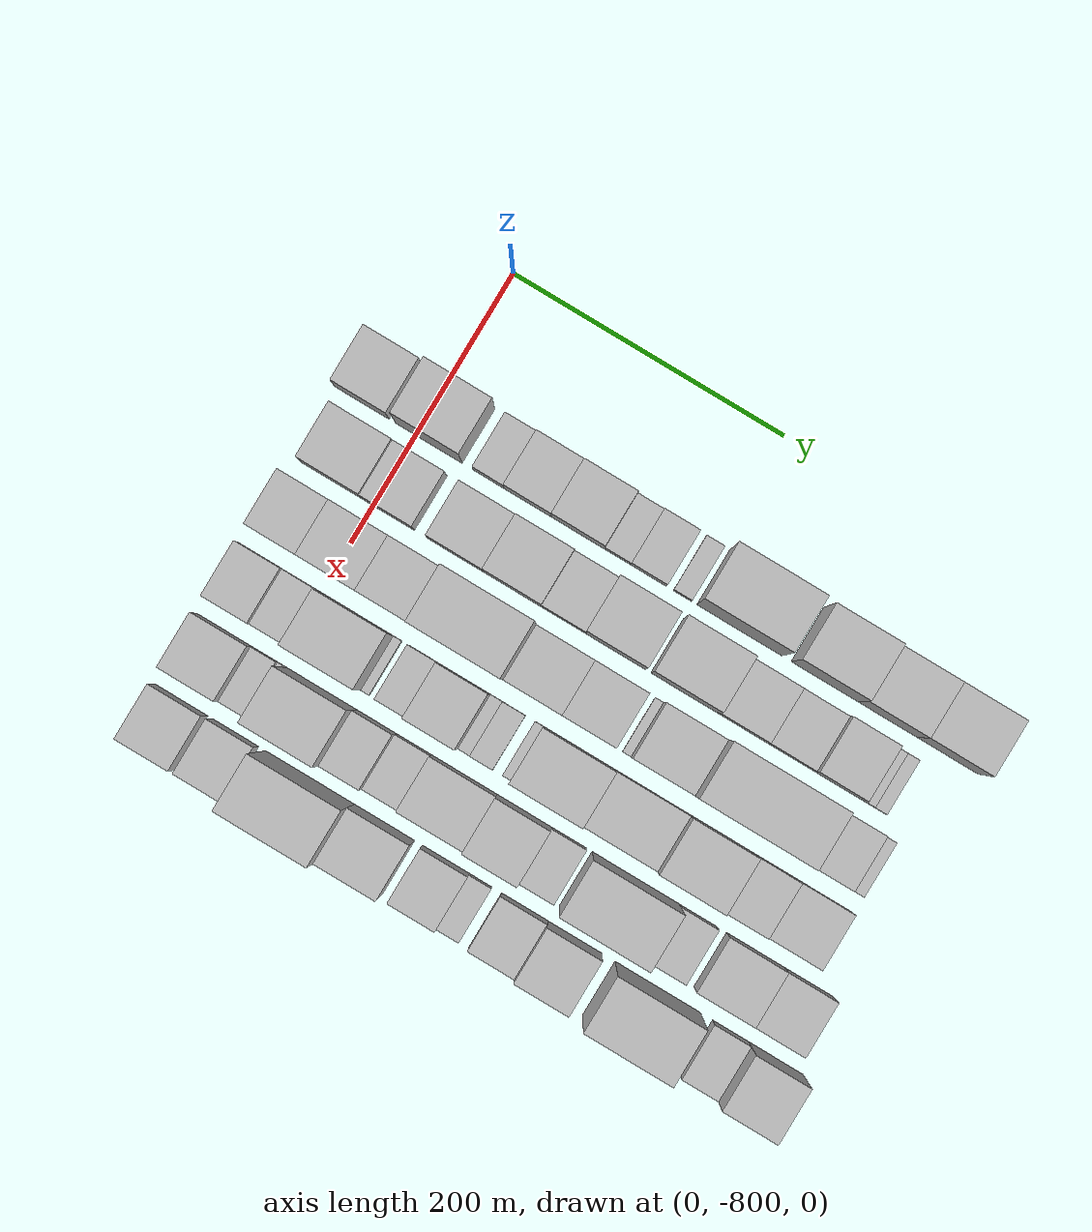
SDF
<sdf version="1.6">
 <world name="default">
  <model name="building_1">
   <static>1</static>
   <pose>100.0000 -839.8954 0 0.000000 0.000000 0.000000</pose>
   <link name="link">
    <pose>0 0 36.00 0 0 0</pose>
    <collision name="collision"><geometry><box><size>40.0000 40.2092 72.0000</size></box></geometry></collision>
    <visual name="visual">
     <cast_shadows>0</cast_shadows>
     <geometry><box><size>40.0000 40.2092 72.0000</size></box></geometry>
     <material>
      <script>
       <uri>model://HANNAS_wall/materials/scripts</uri>
       <uri>model://HANNAS_wall/materials/textures</uri>
       <name>vrc/HANNAS_wall</name>
      </script>
     </material>
    </visual>
   </link>
  </model>
  <model name="building_2">
   <static>1</static>
   <pose>100.0000 -790.3096 0 0.000000 0.000000 0.000000</pose>
   <link name="link">
    <pose>0 0 61.50 0 0 0</pose>
    <collision name="collision"><geometry><box><size>40.0000 48.9624 123.0000</size></box></geometry></collision>
    <visual name="visual">
     <cast_shadows>0</cast_shadows>
     <geometry><box><size>40.0000 48.9624 123.0000</size></box></geometry>
     <material>
      <script>
       <uri>model://HANNAS_wall/materials/scripts</uri>
       <uri>model://HANNAS_wall/materials/textures</uri>
       <name>vrc/HANNAS_wall</name>
      </script>
     </material>
    </visual>
   </link>
  </model>
  <model name="building_3">
   <static>1</static>
   <pose>100.0000 -746.4071 0 0.000000 0.000000 0.000000</pose>
   <link name="link">
    <pose>0 0 22.50 0 0 0</pose>
    <collision name="collision"><geometry><box><size>40.0000 22.8427 45.0000</size></box></geometry></collision>
    <visual name="visual">
     <cast_shadows>0</cast_shadows>
     <geometry><box><size>40.0000 22.8427 45.0000</size></box></geometry>
     <material>
      <script>
       <uri>model://HANNAS_wall/materials/scripts</uri>
       <uri>model://HANNAS_wall/materials/textures</uri>
       <name>vrc/HANNAS_wall</name>
      </script>
     </material>
    </visual>
   </link>
  </model>
  <model name="building_4">
   <static>1</static>
   <pose>100.0000 -717.5129 0 0.000000 0.000000 0.000000</pose>
   <link name="link">
    <pose>0 0 30.00 0 0 0</pose>
    <collision name="collision"><geometry><box><size>40.0000 34.9457 60.0000</size></box></geometry></collision>
    <visual name="visual">
     <cast_shadows>0</cast_shadows>
     <geometry><box><size>40.0000 34.9457 60.0000</size></box></geometry>
     <material>
      <script>
       <uri>model://HANNAS_wall/materials/scripts</uri>
       <uri>model://HANNAS_wall/materials/textures</uri>
       <name>vrc/HANNAS_wall</name>
      </script>
     </material>
    </visual>
   </link>
  </model>
  <model name="building_5">
   <static>1</static>
   <pose>100.0000 -680.2870 0 0.000000 0.000000 0.000000</pose>
   <link name="link">
    <pose>0 0 33.00 0 0 0</pose>
    <collision name="collision"><geometry><box><size>40.0000 39.5061 66.0000</size></box></geometry></collision>
    <visual name="visual">
     <cast_shadows>0</cast_shadows>
     <geometry><box><size>40.0000 39.5061 66.0000</size></box></geometry>
     <material>
      <script>
       <uri>model://HANNAS_wall/materials/scripts</uri>
       <uri>model://HANNAS_wall/materials/textures</uri>
       <name>vrc/HANNAS_wall</name>
      </script>
     </material>
    </visual>
   </link>
  </model>
  <model name="building_6">
   <static>1</static>
   <pose>100.0000 -650.8760 0 0.000000 0.000000 0.000000</pose>
   <link name="link">
    <pose>0 0 18.00 0 0 0</pose>
    <collision name="collision"><geometry><box><size>40.0000 19.3160 36.0000</size></box></geometry></collision>
    <visual name="visual">
     <cast_shadows>0</cast_shadows>
     <geometry><box><size>40.0000 19.3160 36.0000</size></box></geometry>
     <material>
      <script>
       <uri>model://HANNAS_wall/materials/scripts</uri>
       <uri>model://HANNAS_wall/materials/textures</uri>
       <name>vrc/HANNAS_wall</name>
      </script>
     </material>
    </visual>
   </link>
  </model>
  <model name="building_7">
   <static>1</static>
   <pose>100.0000 -628.0339 0 0.000000 0.000000 0.000000</pose>
   <link name="link">
    <pose>0 0 22.50 0 0 0</pose>
    <collision name="collision"><geometry><box><size>40.0000 26.3681 45.0000</size></box></geometry></collision>
    <visual name="visual">
     <cast_shadows>0</cast_shadows>
     <geometry><box><size>40.0000 26.3681 45.0000</size></box></geometry>
     <material>
      <script>
       <uri>model://HANNAS_wall/materials/scripts</uri>
       <uri>model://HANNAS_wall/materials/textures</uri>
       <name>vrc/HANNAS_wall</name>
      </script>
     </material>
    </visual>
   </link>
  </model>
  <model name="building_8">
   <static>1</static>
   <pose>100.0000 -603.1734 0 0.000000 0.000000 0.000000</pose>
   <link name="link">
    <pose>0 0 13.50 0 0 0</pose>
    <collision name="collision"><geometry><box><size>40.0000 13.3529 27.0000</size></box></geometry></collision>
    <visual name="visual">
     <cast_shadows>0</cast_shadows>
     <geometry><box><size>40.0000 13.3529 27.0000</size></box></geometry>
     <material>
      <script>
       <uri>model://HANNAS_wall/materials/scripts</uri>
       <uri>model://HANNAS_wall/materials/textures</uri>
       <name>vrc/HANNAS_wall</name>
      </script>
     </material>
    </visual>
   </link>
  </model>
  <model name="building_9">
   <static>1</static>
   <pose>100.0000 -561.1378 0 0.000000 0.000000 0.000000</pose>
   <link name="link">
    <pose>0 0 94.50 0 0 0</pose>
    <collision name="collision"><geometry><box><size>40.0000 62.7183 189.0000</size></box></geometry></collision>
    <visual name="visual">
     <cast_shadows>0</cast_shadows>
     <geometry><box><size>40.0000 62.7183 189.0000</size></box></geometry>
     <material>
      <script>
       <uri>model://HANNAS_wall/materials/scripts</uri>
       <uri>model://HANNAS_wall/materials/textures</uri>
       <name>vrc/HANNAS_wall</name>
      </script>
     </material>
    </visual>
   </link>
  </model>
  <model name="building_10">
   <static>1</static>
   <pose>100.0000 -498.4930 0 0.000000 0.000000 0.000000</pose>
   <link name="link">
    <pose>0 0 79.50 0 0 0</pose>
    <collision name="collision"><geometry><box><size>40.0000 48.5714 159.0000</size></box></geometry></collision>
    <visual name="visual">
     <cast_shadows>0</cast_shadows>
     <geometry><box><size>40.0000 48.5714 159.0000</size></box></geometry>
     <material>
      <script>
       <uri>model://HANNAS_wall/materials/scripts</uri>
       <uri>model://HANNAS_wall/materials/textures</uri>
       <name>vrc/HANNAS_wall</name>
      </script>
     </material>
    </visual>
   </link>
  </model>
  <model name="building_11">
   <static>1</static>
   <pose>100.0000 -452.2051 0 0.000000 0.000000 0.000000</pose>
   <link name="link">
    <pose>0 0 64.50 0 0 0</pose>
    <collision name="collision"><geometry><box><size>40.0000 44.0044 129.0000</size></box></geometry></collision>
    <visual name="visual">
     <cast_shadows>0</cast_shadows>
     <geometry><box><size>40.0000 44.0044 129.0000</size></box></geometry>
     <material>
      <script>
       <uri>model://HANNAS_wall/materials/scripts</uri>
       <uri>model://HANNAS_wall/materials/textures</uri>
       <name>vrc/HANNAS_wall</name>
      </script>
     </material>
    </visual>
   </link>
  </model>
  <model name="building_12">
   <static>1</static>
   <pose>100.0000 -407.4335 0 0.000000 0.000000 0.000000</pose>
   <link name="link">
    <pose>0 0 64.50 0 0 0</pose>
    <collision name="collision"><geometry><box><size>40.0000 45.5388 129.0000</size></box></geometry></collision>
    <visual name="visual">
     <cast_shadows>0</cast_shadows>
     <geometry><box><size>40.0000 45.5388 129.0000</size></box></geometry>
     <material>
      <script>
       <uri>model://HANNAS_wall/materials/scripts</uri>
       <uri>model://HANNAS_wall/materials/textures</uri>
       <name>vrc/HANNAS_wall</name>
      </script>
     </material>
    </visual>
   </link>
  </model>
  <model name="building_53">
   <static>1</static>
   <pose>152.0000 -830.3394 0 0.000000 0.000000 0.000000</pose>
   <link name="link">
    <pose>0 0 42.00 0 0 0</pose>
    <collision name="collision"><geometry><box><size>40.0000 45.3212 84.0000</size></box></geometry></collision>
    <visual name="visual">
     <cast_shadows>0</cast_shadows>
     <geometry><box><size>40.0000 45.3212 84.0000</size></box></geometry>
     <material>
      <script>
       <uri>model://HANNAS_wall/materials/scripts</uri>
       <uri>model://HANNAS_wall/materials/textures</uri>
       <name>vrc/HANNAS_wall</name>
      </script>
     </material>
    </visual>
   </link>
  </model>
  <model name="building_54">
   <static>1</static>
   <pose>152.0000 -788.7393 0 0.000000 0.000000 0.000000</pose>
   <link name="link">
    <pose>0 0 36.00 0 0 0</pose>
    <collision name="collision"><geometry><box><size>40.0000 37.8789 72.0000</size></box></geometry></collision>
    <visual name="visual">
     <cast_shadows>0</cast_shadows>
     <geometry><box><size>40.0000 37.8789 72.0000</size></box></geometry>
     <material>
      <script>
       <uri>model://HANNAS_wall/materials/scripts</uri>
       <uri>model://HANNAS_wall/materials/textures</uri>
       <name>vrc/HANNAS_wall</name>
      </script>
     </material>
    </visual>
   </link>
  </model>
  <model name="building_55">
   <static>1</static>
   <pose>152.0000 -739.1834 0 0.000000 0.000000 0.000000</pose>
   <link name="link">
    <pose>0 0 34.50 0 0 0</pose>
    <collision name="collision"><geometry><box><size>40.0000 41.2328 69.0000</size></box></geometry></collision>
    <visual name="visual">
     <cast_shadows>0</cast_shadows>
     <geometry><box><size>40.0000 41.2328 69.0000</size></box></geometry>
     <material>
      <script>
       <uri>model://HANNAS_wall/materials/scripts</uri>
       <uri>model://HANNAS_wall/materials/textures</uri>
       <name>vrc/HANNAS_wall</name>
      </script>
     </material>
    </visual>
   </link>
  </model>
  <model name="building_56">
   <static>1</static>
   <pose>152.0000 -697.1136 0 0.000000 0.000000 0.000000</pose>
   <link name="link">
    <pose>0 0 42.00 0 0 0</pose>
    <collision name="collision"><geometry><box><size>40.0000 42.9070 84.0000</size></box></geometry></collision>
    <visual name="visual">
     <cast_shadows>0</cast_shadows>
     <geometry><box><size>40.0000 42.9070 84.0000</size></box></geometry>
     <material>
      <script>
       <uri>model://HANNAS_wall/materials/scripts</uri>
       <uri>model://HANNAS_wall/materials/textures</uri>
       <name>vrc/HANNAS_wall</name>
      </script>
     </material>
    </visual>
   </link>
  </model>
  <model name="building_57">
   <static>1</static>
   <pose>152.0000 -659.3815 0 0.000000 0.000000 0.000000</pose>
   <link name="link">
    <pose>0 0 31.50 0 0 0</pose>
    <collision name="collision"><geometry><box><size>40.0000 32.5571 63.0000</size></box></geometry></collision>
    <visual name="visual">
     <cast_shadows>0</cast_shadows>
     <geometry><box><size>40.0000 32.5571 63.0000</size></box></geometry>
     <material>
      <script>
       <uri>model://HANNAS_wall/materials/scripts</uri>
       <uri>model://HANNAS_wall/materials/textures</uri>
       <name>vrc/HANNAS_wall</name>
      </script>
     </material>
    </visual>
   </link>
  </model>
  <model name="building_58">
   <static>1</static>
   <pose>152.0000 -621.1290 0 0.000000 0.000000 0.000000</pose>
   <link name="link">
    <pose>0 0 63.00 0 0 0</pose>
    <collision name="collision"><geometry><box><size>40.0000 43.9479 126.0000</size></box></geometry></collision>
    <visual name="visual">
     <cast_shadows>0</cast_shadows>
     <geometry><box><size>40.0000 43.9479 126.0000</size></box></geometry>
     <material>
      <script>
       <uri>model://HANNAS_wall/materials/scripts</uri>
       <uri>model://HANNAS_wall/materials/textures</uri>
       <name>vrc/HANNAS_wall</name>
      </script>
     </material>
    </visual>
   </link>
  </model>
  <model name="building_59">
   <static>1</static>
   <pose>152.0000 -570.8539 0 0.000000 0.000000 0.000000</pose>
   <link name="link">
    <pose>0 0 75.00 0 0 0</pose>
    <collision name="collision"><geometry><box><size>40.0000 48.6024 150.0000</size></box></geometry></collision>
    <visual name="visual">
     <cast_shadows>0</cast_shadows>
     <geometry><box><size>40.0000 48.6024 150.0000</size></box></geometry>
     <material>
      <script>
       <uri>model://HANNAS_wall/materials/scripts</uri>
       <uri>model://HANNAS_wall/materials/textures</uri>
       <name>vrc/HANNAS_wall</name>
      </script>
     </material>
    </visual>
   </link>
  </model>
  <model name="building_60">
   <static>1</static>
   <pose>152.0000 -528.0042 0 0.000000 0.000000 0.000000</pose>
   <link name="link">
    <pose>0 0 36.00 0 0 0</pose>
    <collision name="collision"><geometry><box><size>40.0000 37.0969 72.0000</size></box></geometry></collision>
    <visual name="visual">
     <cast_shadows>0</cast_shadows>
     <geometry><box><size>40.0000 37.0969 72.0000</size></box></geometry>
     <material>
      <script>
       <uri>model://HANNAS_wall/materials/scripts</uri>
       <uri>model://HANNAS_wall/materials/textures</uri>
       <name>vrc/HANNAS_wall</name>
      </script>
     </material>
    </visual>
   </link>
  </model>
  <model name="building_61">
   <static>1</static>
   <pose>152.0000 -492.6027 0 0.000000 0.000000 0.000000</pose>
   <link name="link">
    <pose>0 0 33.00 0 0 0</pose>
    <collision name="collision"><geometry><box><size>40.0000 33.7060 66.0000</size></box></geometry></collision>
    <visual name="visual">
     <cast_shadows>0</cast_shadows>
     <geometry><box><size>40.0000 33.7060 66.0000</size></box></geometry>
     <material>
      <script>
       <uri>model://HANNAS_wall/materials/scripts</uri>
       <uri>model://HANNAS_wall/materials/textures</uri>
       <name>vrc/HANNAS_wall</name>
      </script>
     </material>
    </visual>
   </link>
  </model>
  <model name="building_62">
   <static>1</static>
   <pose>152.0000 -458.1537 0 0.000000 0.000000 0.000000</pose>
   <link name="link">
    <pose>0 0 49.50 0 0 0</pose>
    <collision name="collision"><geometry><box><size>40.0000 35.1920 99.0000</size></box></geometry></collision>
    <visual name="visual">
     <cast_shadows>0</cast_shadows>
     <geometry><box><size>40.0000 35.1920 99.0000</size></box></geometry>
     <material>
      <script>
       <uri>model://HANNAS_wall/materials/scripts</uri>
       <uri>model://HANNAS_wall/materials/textures</uri>
       <name>vrc/HANNAS_wall</name>
      </script>
     </material>
    </visual>
   </link>
  </model>
  <model name="building_63">
   <static>1</static>
   <pose>152.0000 -435.5250 0 0.000000 0.000000 0.000000</pose>
   <link name="link">
    <pose>0 0 10.50 0 0 0</pose>
    <collision name="collision"><geometry><box><size>40.0000 10.0653 21.0000</size></box></geometry></collision>
    <visual name="visual">
     <cast_shadows>0</cast_shadows>
     <geometry><box><size>40.0000 10.0653 21.0000</size></box></geometry>
     <material>
      <script>
       <uri>model://HANNAS_wall/materials/scripts</uri>
       <uri>model://HANNAS_wall/materials/textures</uri>
       <name>vrc/HANNAS_wall</name>
      </script>
     </material>
    </visual>
   </link>
  </model>
  <model name="building_64">
   <static>1</static>
   <pose>152.0000 -426.1547 0 0.000000 0.000000 0.000000</pose>
   <link name="link">
    <pose>0 0 10.50 0 0 0</pose>
    <collision name="collision"><geometry><box><size>40.0000 8.6754 21.0000</size></box></geometry></collision>
    <visual name="visual">
     <cast_shadows>0</cast_shadows>
     <geometry><box><size>40.0000 8.6754 21.0000</size></box></geometry>
     <material>
      <script>
       <uri>model://HANNAS_wall/materials/scripts</uri>
       <uri>model://HANNAS_wall/materials/textures</uri>
       <name>vrc/HANNAS_wall</name>
      </script>
     </material>
    </visual>
   </link>
  </model>
  <model name="building_101">
   <static>1</static>
   <pose>204.0000 -841.2603 0 0.000000 0.000000 0.000000</pose>
   <link name="link">
    <pose>0 0 34.50 0 0 0</pose>
    <collision name="collision"><geometry><box><size>40.0000 37.4795 69.0000</size></box></geometry></collision>
    <visual name="visual">
     <cast_shadows>0</cast_shadows>
     <geometry><box><size>40.0000 37.4795 69.0000</size></box></geometry>
     <material>
      <script>
       <uri>model://HANNAS_wall/materials/scripts</uri>
       <uri>model://HANNAS_wall/materials/textures</uri>
       <name>vrc/HANNAS_wall</name>
      </script>
     </material>
    </visual>
   </link>
  </model>
  <model name="building_102">
   <static>1</static>
   <pose>204.0000 -800.9691 0 0.000000 0.000000 0.000000</pose>
   <link name="link">
    <pose>0 0 37.50 0 0 0</pose>
    <collision name="collision"><geometry><box><size>40.0000 43.1028 75.0000</size></box></geometry></collision>
    <visual name="visual">
     <cast_shadows>0</cast_shadows>
     <geometry><box><size>40.0000 43.1028 75.0000</size></box></geometry>
     <material>
      <script>
       <uri>model://HANNAS_wall/materials/scripts</uri>
       <uri>model://HANNAS_wall/materials/textures</uri>
       <name>vrc/HANNAS_wall</name>
      </script>
     </material>
    </visual>
   </link>
  </model>
  <model name="building_103">
   <static>1</static>
   <pose>204.0000 -758.6244 0 0.000000 0.000000 0.000000</pose>
   <link name="link">
    <pose>0 0 37.50 0 0 0</pose>
    <collision name="collision"><geometry><box><size>40.0000 41.5867 75.0000</size></box></geometry></collision>
    <visual name="visual">
     <cast_shadows>0</cast_shadows>
     <geometry><box><size>40.0000 41.5867 75.0000</size></box></geometry>
     <material>
      <script>
       <uri>model://HANNAS_wall/materials/scripts</uri>
       <uri>model://HANNAS_wall/materials/textures</uri>
       <name>vrc/HANNAS_wall</name>
      </script>
     </material>
    </visual>
   </link>
  </model>
  <model name="building_104">
   <static>1</static>
   <pose>204.0000 -704.9629 0 0.000000 0.000000 0.000000</pose>
   <link name="link">
    <pose>0 0 108.00 0 0 0</pose>
    <collision name="collision"><geometry><box><size>40.0000 65.7364 216.0000</size></box></geometry></collision>
    <visual name="visual">
     <cast_shadows>0</cast_shadows>
     <geometry><box><size>40.0000 65.7364 216.0000</size></box></geometry>
     <material>
      <script>
       <uri>model://HANNAS_wall/materials/scripts</uri>
       <uri>model://HANNAS_wall/materials/textures</uri>
       <name>vrc/HANNAS_wall</name>
      </script>
     </material>
    </visual>
   </link>
  </model>
  <model name="building_105">
   <static>1</static>
   <pose>204.0000 -650.7124 0 0.000000 0.000000 0.000000</pose>
   <link name="link">
    <pose>0 0 37.50 0 0 0</pose>
    <collision name="collision"><geometry><box><size>40.0000 42.7646 75.0000</size></box></geometry></collision>
    <visual name="visual">
     <cast_shadows>0</cast_shadows>
     <geometry><box><size>40.0000 42.7646 75.0000</size></box></geometry>
     <material>
      <script>
       <uri>model://HANNAS_wall/materials/scripts</uri>
       <uri>model://HANNAS_wall/materials/textures</uri>
       <name>vrc/HANNAS_wall</name>
      </script>
     </material>
    </visual>
   </link>
  </model>
  <model name="building_106">
   <static>1</static>
   <pose>204.0000 -609.5708 0 0.000000 0.000000 0.000000</pose>
   <link name="link">
    <pose>0 0 34.50 0 0 0</pose>
    <collision name="collision"><geometry><box><size>40.0000 39.5188 69.0000</size></box></geometry></collision>
    <visual name="visual">
     <cast_shadows>0</cast_shadows>
     <geometry><box><size>40.0000 39.5188 69.0000</size></box></geometry>
     <material>
      <script>
       <uri>model://HANNAS_wall/materials/scripts</uri>
       <uri>model://HANNAS_wall/materials/textures</uri>
       <name>vrc/HANNAS_wall</name>
      </script>
     </material>
    </visual>
   </link>
  </model>
  <model name="building_107">
   <static>1</static>
   <pose>204.0000 -581.7474 0 0.000000 0.000000 0.000000</pose>
   <link name="link">
    <pose>0 0 7.50 0 0 0</pose>
    <collision name="collision"><geometry><box><size>40.0000 6.1280 15.0000</size></box></geometry></collision>
    <visual name="visual">
     <cast_shadows>0</cast_shadows>
     <geometry><box><size>40.0000 6.1280 15.0000</size></box></geometry>
     <material>
      <script>
       <uri>model://HANNAS_wall/materials/scripts</uri>
       <uri>model://HANNAS_wall/materials/textures</uri>
       <name>vrc/HANNAS_wall</name>
      </script>
     </material>
    </visual>
   </link>
  </model>
  <model name="building_108">
   <static>1</static>
   <pose>204.0000 -556.5027 0 0.000000 0.000000 0.000000</pose>
   <link name="link">
    <pose>0 0 57.00 0 0 0</pose>
    <collision name="collision"><geometry><box><size>40.0000 44.3613 114.0000</size></box></geometry></collision>
    <visual name="visual">
     <cast_shadows>0</cast_shadows>
     <geometry><box><size>40.0000 44.3613 114.0000</size></box></geometry>
     <material>
      <script>
       <uri>model://HANNAS_wall/materials/scripts</uri>
       <uri>model://HANNAS_wall/materials/textures</uri>
       <name>vrc/HANNAS_wall</name>
      </script>
     </material>
    </visual>
   </link>
  </model>
  <model name="building_109">
   <static>1</static>
   <pose>204.0000 -493.0984 0 0.000000 0.000000 0.000000</pose>
   <link name="link">
    <pose>0 0 106.50 0 0 0</pose>
    <collision name="collision"><geometry><box><size>40.0000 82.4473 213.0000</size></box></geometry></collision>
    <visual name="visual">
     <cast_shadows>0</cast_shadows>
     <geometry><box><size>40.0000 82.4473 213.0000</size></box></geometry>
     <material>
      <script>
       <uri>model://HANNAS_wall/materials/scripts</uri>
       <uri>model://HANNAS_wall/materials/textures</uri>
       <name>vrc/HANNAS_wall</name>
      </script>
     </material>
    </visual>
   </link>
  </model>
  <model name="building_110">
   <static>1</static>
   <pose>204.0000 -434.5883 0 0.000000 0.000000 0.000000</pose>
   <link name="link">
    <pose>0 0 33.00 0 0 0</pose>
    <collision name="collision"><geometry><box><size>40.0000 34.5730 66.0000</size></box></geometry></collision>
    <visual name="visual">
     <cast_shadows>0</cast_shadows>
     <geometry><box><size>40.0000 34.5730 66.0000</size></box></geometry>
     <material>
      <script>
       <uri>model://HANNAS_wall/materials/scripts</uri>
       <uri>model://HANNAS_wall/materials/textures</uri>
       <name>vrc/HANNAS_wall</name>
      </script>
     </material>
    </visual>
   </link>
  </model>
  <model name="building_111">
   <static>1</static>
   <pose>204.0000 -410.5930 0 0.000000 0.000000 0.000000</pose>
   <link name="link">
    <pose>0 0 7.50 0 0 0</pose>
    <collision name="collision"><geometry><box><size>40.0000 7.4175 15.0000</size></box></geometry></collision>
    <visual name="visual">
     <cast_shadows>0</cast_shadows>
     <geometry><box><size>40.0000 7.4175 15.0000</size></box></geometry>
     <material>
      <script>
       <uri>model://HANNAS_wall/materials/scripts</uri>
       <uri>model://HANNAS_wall/materials/textures</uri>
       <name>vrc/HANNAS_wall</name>
      </script>
     </material>
    </visual>
   </link>
  </model>
  <model name="building_148">
   <static>1</static>
   <pose>256.0000 -843.2354 0 0.000000 0.000000 0.000000</pose>
   <link name="link">
    <pose>0 0 33.00 0 0 0</pose>
    <collision name="collision"><geometry><box><size>40.0000 33.5292 66.0000</size></box></geometry></collision>
    <visual name="visual">
     <cast_shadows>0</cast_shadows>
     <geometry><box><size>40.0000 33.5292 66.0000</size></box></geometry>
     <material>
      <script>
       <uri>model://HANNAS_wall/materials/scripts</uri>
       <uri>model://HANNAS_wall/materials/textures</uri>
       <name>vrc/HANNAS_wall</name>
      </script>
     </material>
    </visual>
   </link>
  </model>
  <model name="building_149">
   <static>1</static>
   <pose>256.0000 -812.7556 0 0.000000 0.000000 0.000000</pose>
   <link name="link">
    <pose>0 0 24.00 0 0 0</pose>
    <collision name="collision"><geometry><box><size>40.0000 27.4304 48.0000</size></box></geometry></collision>
    <visual name="visual">
     <cast_shadows>0</cast_shadows>
     <geometry><box><size>40.0000 27.4304 48.0000</size></box></geometry>
     <material>
      <script>
       <uri>model://HANNAS_wall/materials/scripts</uri>
       <uri>model://HANNAS_wall/materials/textures</uri>
       <name>vrc/HANNAS_wall</name>
      </script>
     </material>
    </visual>
   </link>
  </model>
  <model name="building_150">
   <static>1</static>
   <pose>256.0000 -772.6445 0 0.000000 0.000000 0.000000</pose>
   <link name="link">
    <pose>0 0 69.00 0 0 0</pose>
    <collision name="collision"><geometry><box><size>40.0000 52.7917 138.0000</size></box></geometry></collision>
    <visual name="visual">
     <cast_shadows>0</cast_shadows>
     <geometry><box><size>40.0000 52.7917 138.0000</size></box></geometry>
     <material>
      <script>
       <uri>model://HANNAS_wall/materials/scripts</uri>
       <uri>model://HANNAS_wall/materials/textures</uri>
       <name>vrc/HANNAS_wall</name>
      </script>
     </material>
    </visual>
   </link>
  </model>
  <model name="building_151">
   <static>1</static>
   <pose>256.0000 -743.2156 0 0.000000 0.000000 0.000000</pose>
   <link name="link">
    <pose>0 0 7.50 0 0 0</pose>
    <collision name="collision"><geometry><box><size>40.0000 6.0661 15.0000</size></box></geometry></collision>
    <visual name="visual">
     <cast_shadows>0</cast_shadows>
     <geometry><box><size>40.0000 6.0661 15.0000</size></box></geometry>
     <material>
      <script>
       <uri>model://HANNAS_wall/materials/scripts</uri>
       <uri>model://HANNAS_wall/materials/textures</uri>
       <name>vrc/HANNAS_wall</name>
      </script>
     </material>
    </visual>
   </link>
  </model>
  <model name="building_152">
   <static>1</static>
   <pose>256.0000 -723.8103 0 0.000000 0.000000 0.000000</pose>
   <link name="link">
    <pose>0 0 22.50 0 0 0</pose>
    <collision name="collision"><geometry><box><size>40.0000 22.7446 45.0000</size></box></geometry></collision>
    <visual name="visual">
     <cast_shadows>0</cast_shadows>
     <geometry><box><size>40.0000 22.7446 45.0000</size></box></geometry>
     <material>
      <script>
       <uri>model://HANNAS_wall/materials/scripts</uri>
       <uri>model://HANNAS_wall/materials/textures</uri>
       <name>vrc/HANNAS_wall</name>
      </script>
     </material>
    </visual>
   </link>
  </model>
  <model name="building_153">
   <static>1</static>
   <pose>256.0000 -693.6555 0 0.000000 0.000000 0.000000</pose>
   <link name="link">
    <pose>0 0 58.50 0 0 0</pose>
    <collision name="collision"><geometry><box><size>40.0000 37.5650 117.0000</size></box></geometry></collision>
    <visual name="visual">
     <cast_shadows>0</cast_shadows>
     <geometry><box><size>40.0000 37.5650 117.0000</size></box></geometry>
     <material>
      <script>
       <uri>model://HANNAS_wall/materials/scripts</uri>
       <uri>model://HANNAS_wall/materials/textures</uri>
       <name>vrc/HANNAS_wall</name>
      </script>
     </material>
    </visual>
   </link>
  </model>
  <model name="building_154">
   <static>1</static>
   <pose>256.0000 -670.4118 0 0.000000 0.000000 0.000000</pose>
   <link name="link">
    <pose>0 0 9.00 0 0 0</pose>
    <collision name="collision"><geometry><box><size>40.0000 8.9224 18.0000</size></box></geometry></collision>
    <visual name="visual">
     <cast_shadows>0</cast_shadows>
     <geometry><box><size>40.0000 8.9224 18.0000</size></box></geometry>
     <material>
      <script>
       <uri>model://HANNAS_wall/materials/scripts</uri>
       <uri>model://HANNAS_wall/materials/textures</uri>
       <name>vrc/HANNAS_wall</name>
      </script>
     </material>
    </visual>
   </link>
  </model>
  <model name="building_155">
   <static>1</static>
   <pose>256.0000 -657.4738 0 0.000000 0.000000 0.000000</pose>
   <link name="link">
    <pose>0 0 15.00 0 0 0</pose>
    <collision name="collision"><geometry><box><size>40.0000 16.9537 30.0000</size></box></geometry></collision>
    <visual name="visual">
     <cast_shadows>0</cast_shadows>
     <geometry><box><size>40.0000 16.9537 30.0000</size></box></geometry>
     <material>
      <script>
       <uri>model://HANNAS_wall/materials/scripts</uri>
       <uri>model://HANNAS_wall/materials/textures</uri>
       <name>vrc/HANNAS_wall</name>
      </script>
     </material>
    </visual>
   </link>
  </model>
  <model name="building_156">
   <static>1</static>
   <pose>256.0000 -638.8430 0 0.000000 0.000000 0.000000</pose>
   <link name="link">
    <pose>0 0 7.50 0 0 0</pose>
    <collision name="collision"><geometry><box><size>40.0000 6.3080 15.0000</size></box></geometry></collision>
    <visual name="visual">
     <cast_shadows>0</cast_shadows>
     <geometry><box><size>40.0000 6.3080 15.0000</size></box></geometry>
     <material>
      <script>
       <uri>model://HANNAS_wall/materials/scripts</uri>
       <uri>model://HANNAS_wall/materials/textures</uri>
       <name>vrc/HANNAS_wall</name>
      </script>
     </material>
    </visual>
   </link>
  </model>
  <model name="building_157">
   <static>1</static>
   <pose>256.0000 -609.3770 0 0.000000 0.000000 0.000000</pose>
   <link name="link">
    <pose>0 0 73.50 0 0 0</pose>
    <collision name="collision"><geometry><box><size>40.0000 52.6239 147.0000</size></box></geometry></collision>
    <visual name="visual">
     <cast_shadows>0</cast_shadows>
     <geometry><box><size>40.0000 52.6239 147.0000</size></box></geometry>
     <material>
      <script>
       <uri>model://HANNAS_wall/materials/scripts</uri>
       <uri>model://HANNAS_wall/materials/textures</uri>
       <name>vrc/HANNAS_wall</name>
      </script>
     </material>
    </visual>
   </link>
  </model>
  <model name="building_158">
   <static>1</static>
   <pose>256.0000 -556.1098 0 0.000000 0.000000 0.000000</pose>
   <link name="link">
    <pose>0 0 45.00 0 0 0</pose>
    <collision name="collision"><geometry><box><size>40.0000 53.9105 90.0000</size></box></geometry></collision>
    <visual name="visual">
     <cast_shadows>0</cast_shadows>
     <geometry><box><size>40.0000 53.9105 90.0000</size></box></geometry>
     <material>
      <script>
       <uri>model://HANNAS_wall/materials/scripts</uri>
       <uri>model://HANNAS_wall/materials/textures</uri>
       <name>vrc/HANNAS_wall</name>
      </script>
     </material>
    </visual>
   </link>
  </model>
  <model name="building_159">
   <static>1</static>
   <pose>256.0000 -505.4149 0 0.000000 0.000000 0.000000</pose>
   <link name="link">
    <pose>0 0 75.00 0 0 0</pose>
    <collision name="collision"><geometry><box><size>40.0000 47.4795 150.0000</size></box></geometry></collision>
    <visual name="visual">
     <cast_shadows>0</cast_shadows>
     <geometry><box><size>40.0000 47.4795 150.0000</size></box></geometry>
     <material>
      <script>
       <uri>model://HANNAS_wall/materials/scripts</uri>
       <uri>model://HANNAS_wall/materials/textures</uri>
       <name>vrc/HANNAS_wall</name>
      </script>
     </material>
    </visual>
   </link>
  </model>
  <model name="building_160">
   <static>1</static>
   <pose>256.0000 -465.6985 0 0.000000 0.000000 0.000000</pose>
   <link name="link">
    <pose>0 0 51.00 0 0 0</pose>
    <collision name="collision"><geometry><box><size>40.0000 31.9532 102.0000</size></box></geometry></collision>
    <visual name="visual">
     <cast_shadows>0</cast_shadows>
     <geometry><box><size>40.0000 31.9532 102.0000</size></box></geometry>
     <material>
      <script>
       <uri>model://HANNAS_wall/materials/scripts</uri>
       <uri>model://HANNAS_wall/materials/textures</uri>
       <name>vrc/HANNAS_wall</name>
      </script>
     </material>
    </visual>
   </link>
  </model>
  <model name="building_161">
   <static>1</static>
   <pose>256.0000 -429.6553 0 0.000000 0.000000 0.000000</pose>
   <link name="link">
    <pose>0 0 37.50 0 0 0</pose>
    <collision name="collision"><geometry><box><size>40.0000 40.1332 75.0000</size></box></geometry></collision>
    <visual name="visual">
     <cast_shadows>0</cast_shadows>
     <geometry><box><size>40.0000 40.1332 75.0000</size></box></geometry>
     <material>
      <script>
       <uri>model://HANNAS_wall/materials/scripts</uri>
       <uri>model://HANNAS_wall/materials/textures</uri>
       <name>vrc/HANNAS_wall</name>
      </script>
     </material>
    </visual>
   </link>
  </model>
  <model name="building_192">
   <static>1</static>
   <pose>308.0000 -839.3848 0 0.000000 0.000000 0.000000</pose>
   <link name="link">
    <pose>0 0 36.00 0 0 0</pose>
    <collision name="collision"><geometry><box><size>40.0000 41.2304 72.0000</size></box></geometry></collision>
    <visual name="visual">
     <cast_shadows>0</cast_shadows>
     <geometry><box><size>40.0000 41.2304 72.0000</size></box></geometry>
     <material>
      <script>
       <uri>model://HANNAS_wall/materials/scripts</uri>
       <uri>model://HANNAS_wall/materials/textures</uri>
       <name>vrc/HANNAS_wall</name>
      </script>
     </material>
    </visual>
   </link>
  </model>
  <model name="building_193">
   <static>1</static>
   <pose>308.0000 -809.5592 0 0.000000 0.000000 0.000000</pose>
   <link name="link">
    <pose>0 0 16.50 0 0 0</pose>
    <collision name="collision"><geometry><box><size>40.0000 18.4207 33.0000</size></box></geometry></collision>
    <visual name="visual">
     <cast_shadows>0</cast_shadows>
     <geometry><box><size>40.0000 18.4207 33.0000</size></box></geometry>
     <material>
      <script>
       <uri>model://HANNAS_wall/materials/scripts</uri>
       <uri>model://HANNAS_wall/materials/textures</uri>
       <name>vrc/HANNAS_wall</name>
      </script>
     </material>
    </visual>
   </link>
  </model>
  <model name="building_194">
   <static>1</static>
   <pose>308.0000 -797.2122 0 0.000000 0.000000 0.000000</pose>
   <link name="link">
    <pose>0 0 7.50 0 0 0</pose>
    <collision name="collision"><geometry><box><size>40.0000 6.2733 15.0000</size></box></geometry></collision>
    <visual name="visual">
     <cast_shadows>0</cast_shadows>
     <geometry><box><size>40.0000 6.2733 15.0000</size></box></geometry>
     <material>
      <script>
       <uri>model://HANNAS_wall/materials/scripts</uri>
       <uri>model://HANNAS_wall/materials/textures</uri>
       <name>vrc/HANNAS_wall</name>
      </script>
     </material>
    </visual>
   </link>
  </model>
  <model name="building_195">
   <static>1</static>
   <pose>308.0000 -767.9832 0 0.000000 0.000000 0.000000</pose>
   <link name="link">
    <pose>0 0 84.00 0 0 0</pose>
    <collision name="collision"><geometry><box><size>40.0000 52.1848 168.0000</size></box></geometry></collision>
    <visual name="visual">
     <cast_shadows>0</cast_shadows>
     <geometry><box><size>40.0000 52.1848 168.0000</size></box></geometry>
     <material>
      <script>
       <uri>model://HANNAS_wall/materials/scripts</uri>
       <uri>model://HANNAS_wall/materials/textures</uri>
       <name>vrc/HANNAS_wall</name>
      </script>
     </material>
    </visual>
   </link>
  </model>
  <model name="building_196">
   <static>1</static>
   <pose>308.0000 -727.3388 0 0.000000 0.000000 0.000000</pose>
   <link name="link">
    <pose>0 0 46.50 0 0 0</pose>
    <collision name="collision"><geometry><box><size>40.0000 29.1040 93.0000</size></box></geometry></collision>
    <visual name="visual">
     <cast_shadows>0</cast_shadows>
     <geometry><box><size>40.0000 29.1040 93.0000</size></box></geometry>
     <material>
      <script>
       <uri>model://HANNAS_wall/materials/scripts</uri>
       <uri>model://HANNAS_wall/materials/textures</uri>
       <name>vrc/HANNAS_wall</name>
      </script>
     </material>
    </visual>
   </link>
  </model>
  <model name="building_197">
   <static>1</static>
   <pose>308.0000 -699.7958 0 0.000000 0.000000 0.000000</pose>
   <link name="link">
    <pose>0 0 25.50 0 0 0</pose>
    <collision name="collision"><geometry><box><size>40.0000 25.9822 51.0000</size></box></geometry></collision>
    <visual name="visual">
     <cast_shadows>0</cast_shadows>
     <geometry><box><size>40.0000 25.9822 51.0000</size></box></geometry>
     <material>
      <script>
       <uri>model://HANNAS_wall/materials/scripts</uri>
       <uri>model://HANNAS_wall/materials/textures</uri>
       <name>vrc/HANNAS_wall</name>
      </script>
     </material>
    </visual>
   </link>
  </model>
  <model name="building_198">
   <static>1</static>
   <pose>308.0000 -662.6240 0 0.000000 0.000000 0.000000</pose>
   <link name="link">
    <pose>0 0 40.50 0 0 0</pose>
    <collision name="collision"><geometry><box><size>40.0000 48.3613 81.0000</size></box></geometry></collision>
    <visual name="visual">
     <cast_shadows>0</cast_shadows>
     <geometry><box><size>40.0000 48.3613 81.0000</size></box></geometry>
     <material>
      <script>
       <uri>model://HANNAS_wall/materials/scripts</uri>
       <uri>model://HANNAS_wall/materials/textures</uri>
       <name>vrc/HANNAS_wall</name>
      </script>
     </material>
    </visual>
   </link>
  </model>
  <model name="building_199">
   <static>1</static>
   <pose>308.0000 -618.5532 0 0.000000 0.000000 0.000000</pose>
   <link name="link">
    <pose>0 0 61.50 0 0 0</pose>
    <collision name="collision"><geometry><box><size>40.0000 39.7803 123.0000</size></box></geometry></collision>
    <visual name="visual">
     <cast_shadows>0</cast_shadows>
     <geometry><box><size>40.0000 39.7803 123.0000</size></box></geometry>
     <material>
      <script>
       <uri>model://HANNAS_wall/materials/scripts</uri>
       <uri>model://HANNAS_wall/materials/textures</uri>
       <name>vrc/HANNAS_wall</name>
      </script>
     </material>
    </visual>
   </link>
  </model>
  <model name="building_200">
   <static>1</static>
   <pose>308.0000 -585.6550 0 0.000000 0.000000 0.000000</pose>
   <link name="link">
    <pose>0 0 25.50 0 0 0</pose>
    <collision name="collision"><geometry><box><size>40.0000 26.0162 51.0000</size></box></geometry></collision>
    <visual name="visual">
     <cast_shadows>0</cast_shadows>
     <geometry><box><size>40.0000 26.0162 51.0000</size></box></geometry>
     <material>
      <script>
       <uri>model://HANNAS_wall/materials/scripts</uri>
       <uri>model://HANNAS_wall/materials/textures</uri>
       <name>vrc/HANNAS_wall</name>
      </script>
     </material>
    </visual>
   </link>
  </model>
  <model name="building_201">
   <static>1</static>
   <pose>308.0000 -536.5322 0 0.000000 0.000000 0.000000</pose>
   <link name="link">
    <pose>0 0 91.50 0 0 0</pose>
    <collision name="collision"><geometry><box><size>40.0000 64.2293 183.0000</size></box></geometry></collision>
    <visual name="visual">
     <cast_shadows>0</cast_shadows>
     <geometry><box><size>40.0000 64.2293 183.0000</size></box></geometry>
     <material>
      <script>
       <uri>model://HANNAS_wall/materials/scripts</uri>
       <uri>model://HANNAS_wall/materials/textures</uri>
       <name>vrc/HANNAS_wall</name>
      </script>
     </material>
    </visual>
   </link>
  </model>
  <model name="building_202">
   <static>1</static>
   <pose>308.0000 -490.3413 0 0.000000 0.000000 0.000000</pose>
   <link name="link">
    <pose>0 0 27.00 0 0 0</pose>
    <collision name="collision"><geometry><box><size>40.0000 28.1525 54.0000</size></box></geometry></collision>
    <visual name="visual">
     <cast_shadows>0</cast_shadows>
     <geometry><box><size>40.0000 28.1525 54.0000</size></box></geometry>
     <material>
      <script>
       <uri>model://HANNAS_wall/materials/scripts</uri>
       <uri>model://HANNAS_wall/materials/textures</uri>
       <name>vrc/HANNAS_wall</name>
      </script>
     </material>
    </visual>
   </link>
  </model>
  <model name="building_203">
   <static>1</static>
   <pose>308.0000 -447.9117 0 0.000000 0.000000 0.000000</pose>
   <link name="link">
    <pose>0 0 36.00 0 0 0</pose>
    <collision name="collision"><geometry><box><size>40.0000 42.7068 72.0000</size></box></geometry></collision>
    <visual name="visual">
     <cast_shadows>0</cast_shadows>
     <geometry><box><size>40.0000 42.7068 72.0000</size></box></geometry>
     <material>
      <script>
       <uri>model://HANNAS_wall/materials/scripts</uri>
       <uri>model://HANNAS_wall/materials/textures</uri>
       <name>vrc/HANNAS_wall</name>
      </script>
     </material>
    </visual>
   </link>
  </model>
  <model name="building_204">
   <static>1</static>
   <pose>308.0000 -408.4111 0 0.000000 0.000000 0.000000</pose>
   <link name="link">
    <pose>0 0 34.50 0 0 0</pose>
    <collision name="collision"><geometry><box><size>40.0000 36.2943 69.0000</size></box></geometry></collision>
    <visual name="visual">
     <cast_shadows>0</cast_shadows>
     <geometry><box><size>40.0000 36.2943 69.0000</size></box></geometry>
     <material>
      <script>
       <uri>model://HANNAS_wall/materials/scripts</uri>
       <uri>model://HANNAS_wall/materials/textures</uri>
       <name>vrc/HANNAS_wall</name>
      </script>
     </material>
    </visual>
   </link>
  </model>
  <model name="building_243">
   <static>1</static>
   <pose>360.0000 -840.5285 0 0.000000 0.000000 0.000000</pose>
   <link name="link">
    <pose>0 0 33.00 0 0 0</pose>
    <collision name="collision"><geometry><box><size>40.0000 38.9429 66.0000</size></box></geometry></collision>
    <visual name="visual">
     <cast_shadows>0</cast_shadows>
     <geometry><box><size>40.0000 38.9429 66.0000</size></box></geometry>
     <material>
      <script>
       <uri>model://HANNAS_wall/materials/scripts</uri>
       <uri>model://HANNAS_wall/materials/textures</uri>
       <name>vrc/HANNAS_wall</name>
      </script>
     </material>
    </visual>
   </link>
  </model>
  <model name="building_244">
   <static>1</static>
   <pose>360.0000 -800.7954 0 0.000000 0.000000 0.000000</pose>
   <link name="link">
    <pose>0 0 31.50 0 0 0</pose>
    <collision name="collision"><geometry><box><size>40.0000 34.5233 63.0000</size></box></geometry></collision>
    <visual name="visual">
     <cast_shadows>0</cast_shadows>
     <geometry><box><size>40.0000 34.5233 63.0000</size></box></geometry>
     <material>
      <script>
       <uri>model://HANNAS_wall/materials/scripts</uri>
       <uri>model://HANNAS_wall/materials/textures</uri>
       <name>vrc/HANNAS_wall</name>
      </script>
     </material>
    </visual>
   </link>
  </model>
  <model name="building_245">
   <static>1</static>
   <pose>360.0000 -745.7138 0 0.000000 0.000000 0.000000</pose>
   <link name="link">
    <pose>0 0 97.50 0 0 0</pose>
    <collision name="collision"><geometry><box><size>40.0000 65.6400 195.0000</size></box></geometry></collision>
    <visual name="visual">
     <cast_shadows>0</cast_shadows>
     <geometry><box><size>40.0000 65.6400 195.0000</size></box></geometry>
     <material>
      <script>
       <uri>model://HANNAS_wall/materials/scripts</uri>
       <uri>model://HANNAS_wall/materials/textures</uri>
       <name>vrc/HANNAS_wall</name>
      </script>
     </material>
    </visual>
   </link>
  </model>
  <model name="building_246">
   <static>1</static>
   <pose>360.0000 -690.5812 0 0.000000 0.000000 0.000000</pose>
   <link name="link">
    <pose>0 0 58.50 0 0 0</pose>
    <collision name="collision"><geometry><box><size>40.0000 44.6252 117.0000</size></box></geometry></collision>
    <visual name="visual">
     <cast_shadows>0</cast_shadows>
     <geometry><box><size>40.0000 44.6252 117.0000</size></box></geometry>
     <material>
      <script>
       <uri>model://HANNAS_wall/materials/scripts</uri>
       <uri>model://HANNAS_wall/materials/textures</uri>
       <name>vrc/HANNAS_wall</name>
      </script>
     </material>
    </visual>
   </link>
  </model>
  <model name="building_247">
   <static>1</static>
   <pose>360.0000 -645.0077 0 0.000000 0.000000 0.000000</pose>
   <link name="link">
    <pose>0 0 34.50 0 0 0</pose>
    <collision name="collision"><geometry><box><size>40.0000 34.5218 69.0000</size></box></geometry></collision>
    <visual name="visual">
     <cast_shadows>0</cast_shadows>
     <geometry><box><size>40.0000 34.5218 69.0000</size></box></geometry>
     <material>
      <script>
       <uri>model://HANNAS_wall/materials/scripts</uri>
       <uri>model://HANNAS_wall/materials/textures</uri>
       <name>vrc/HANNAS_wall</name>
      </script>
     </material>
    </visual>
   </link>
  </model>
  <model name="building_248">
   <static>1</static>
   <pose>360.0000 -619.4537 0 0.000000 0.000000 0.000000</pose>
   <link name="link">
    <pose>0 0 15.00 0 0 0</pose>
    <collision name="collision"><geometry><box><size>40.0000 16.5860 30.0000</size></box></geometry></collision>
    <visual name="visual">
     <cast_shadows>0</cast_shadows>
     <geometry><box><size>40.0000 16.5860 30.0000</size></box></geometry>
     <material>
      <script>
       <uri>model://HANNAS_wall/materials/scripts</uri>
       <uri>model://HANNAS_wall/materials/textures</uri>
       <name>vrc/HANNAS_wall</name>
      </script>
     </material>
    </visual>
   </link>
  </model>
  <model name="building_249">
   <static>1</static>
   <pose>360.0000 -587.1391 0 0.000000 0.000000 0.000000</pose>
   <link name="link">
    <pose>0 0 31.50 0 0 0</pose>
    <collision name="collision"><geometry><box><size>40.0000 34.0432 63.0000</size></box></geometry></collision>
    <visual name="visual">
     <cast_shadows>0</cast_shadows>
     <geometry><box><size>40.0000 34.0432 63.0000</size></box></geometry>
     <material>
      <script>
       <uri>model://HANNAS_wall/materials/scripts</uri>
       <uri>model://HANNAS_wall/materials/textures</uri>
       <name>vrc/HANNAS_wall</name>
      </script>
     </material>
    </visual>
   </link>
  </model>
  <model name="building_250">
   <static>1</static>
   <pose>360.0000 -550.2309 0 0.000000 0.000000 0.000000</pose>
   <link name="link">
    <pose>0 0 54.00 0 0 0</pose>
    <collision name="collision"><geometry><box><size>40.0000 39.7733 108.0000</size></box></geometry></collision>
    <visual name="visual">
     <cast_shadows>0</cast_shadows>
     <geometry><box><size>40.0000 39.7733 108.0000</size></box></geometry>
     <material>
      <script>
       <uri>model://HANNAS_wall/materials/scripts</uri>
       <uri>model://HANNAS_wall/materials/textures</uri>
       <name>vrc/HANNAS_wall</name>
      </script>
     </material>
    </visual>
   </link>
  </model>
  <model name="building_251">
   <static>1</static>
   <pose>360.0000 -488.7976 0 0.000000 0.000000 0.000000</pose>
   <link name="link">
    <pose>0 0 90.00 0 0 0</pose>
    <collision name="collision"><geometry><box><size>40.0000 63.0933 180.0000</size></box></geometry></collision>
    <visual name="visual">
     <cast_shadows>0</cast_shadows>
     <geometry><box><size>40.0000 63.0933 180.0000</size></box></geometry>
     <material>
      <script>
       <uri>model://HANNAS_wall/materials/scripts</uri>
       <uri>model://HANNAS_wall/materials/textures</uri>
       <name>vrc/HANNAS_wall</name>
      </script>
     </material>
    </visual>
   </link>
  </model>
  <model name="building_252">
   <static>1</static>
   <pose>360.0000 -434.8755 0 0.000000 0.000000 0.000000</pose>
   <link name="link">
    <pose>0 0 25.50 0 0 0</pose>
    <collision name="collision"><geometry><box><size>40.0000 26.7509 51.0000</size></box></geometry></collision>
    <visual name="visual">
     <cast_shadows>0</cast_shadows>
     <geometry><box><size>40.0000 26.7509 51.0000</size></box></geometry>
     <material>
      <script>
       <uri>model://HANNAS_wall/materials/scripts</uri>
       <uri>model://HANNAS_wall/materials/textures</uri>
       <name>vrc/HANNAS_wall</name>
      </script>
     </material>
    </visual>
   </link>
  </model>
  <model name="building_253">
   <static>1</static>
   <pose>360.0000 -401.4992 0 0.000000 0.000000 0.000000</pose>
   <link name="link">
    <pose>0 0 63.00 0 0 0</pose>
    <collision name="collision"><geometry><box><size>40.0000 40.0018 126.0000</size></box></geometry></collision>
    <visual name="visual">
     <cast_shadows>0</cast_shadows>
     <geometry><box><size>40.0000 40.0018 126.0000</size></box></geometry>
     <material>
      <script>
       <uri>model://HANNAS_wall/materials/scripts</uri>
       <uri>model://HANNAS_wall/materials/textures</uri>
       <name>vrc/HANNAS_wall</name>
      </script>
     </material>
    </visual>
   </link>
  </model>
 </world>
</sdf>
